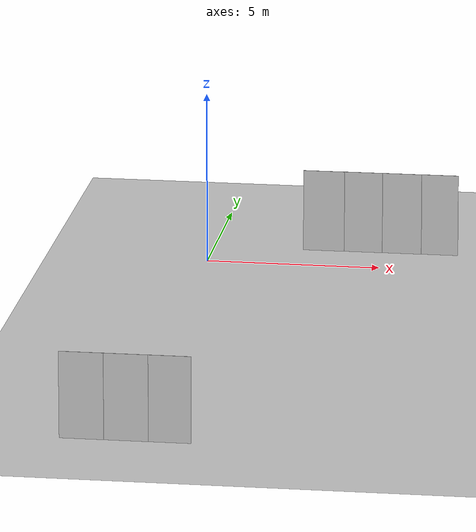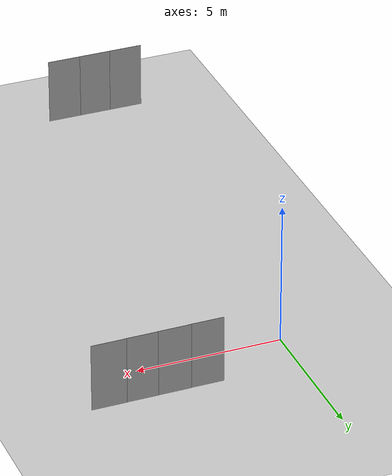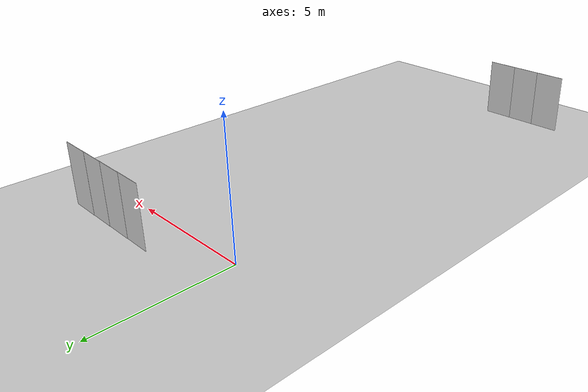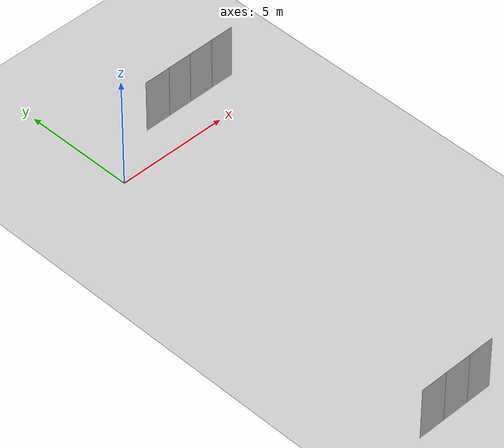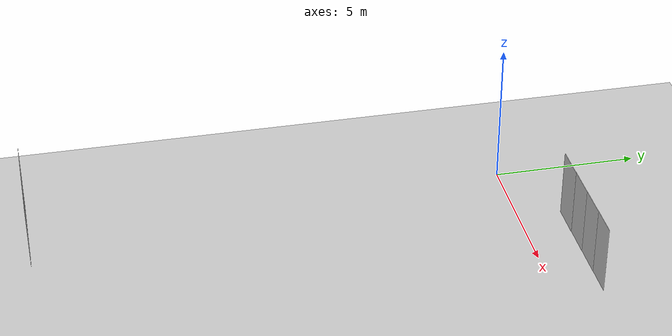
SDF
<sdf version="1.6">
 <world name="default">
  <include><uri>model://ground_plane</uri></include>
  <light name="sun" type="directional">
   <pose>0 0 10 0 -0 0</pose>
   <diffuse>0.8 0.8 0.8 1</diffuse>
   <specular>0.2 0.2 0.2 1</specular>
   <attenuation>
    <range>1000</range>
    <constant>0.9</constant>
    <linear>0.01</linear>
    <quadratic>0.001</quadratic>
   </attenuation>
   <direction>0 0.5 -0.9</direction>
  </light>
  <gravity>0 0 -9.8</gravity>
  <magnetic_field>6e-06 2.3e-05 -4.2e-05</magnetic_field>
  <atmosphere type="adiabatic"/>
  <physics name="default_physics" default="0" type="ode">
   <max_step_size>0.001</max_step_size>
   <real_time_factor>1</real_time_factor>
   <real_time_update_rate>1000</real_time_update_rate>
  </physics>
  <scene><ambient>0.4 0.4 0.4 1</ambient><background>0.7 0.7 0.7 1</background><shadows>1</shadows></scene>
  <spherical_coordinates>
   <surface_model>EARTH_WGS84</surface_model>
   <latitude_deg>0</latitude_deg>
   <longitude_deg>0</longitude_deg>
   <elevation>0</elevation>
   <heading_deg>0</heading_deg>
  </spherical_coordinates>
  <model name="nist_maze_wall_240">
   <static>1</static>
   <link name="nist__maze_wall_240_link">
    <collision name="collision">
     <geometry>
      <mesh><uri>model://nist_maze_wall_240/meshes/nist_maze_wall_240.dae</uri><scale>1 1 1</scale></mesh>
     </geometry>
    </collision>
    <visual name="visual">
     <geometry>
      <mesh><uri>model://nist_maze_wall_240/meshes/nist_maze_wall_240.dae</uri><scale>1 1 1</scale></mesh>
     </geometry>
    </visual>
   </link>
   <pose>6.51795 0.945836 0 0 -0 0</pose>
  </model>
  <model name="nist_maze_wall_240_0">
   <static>1</static>
   <link name="nist__maze_wall_240_link">
    <collision name="collision">
     <geometry>
      <mesh><uri>model://nist_maze_wall_240/meshes/nist_maze_wall_240.dae</uri><scale>1 1 1</scale></mesh>
     </geometry>
    </collision>
    <visual name="visual">
     <geometry>
      <mesh><uri>model://nist_maze_wall_240/meshes/nist_maze_wall_240.dae</uri><scale>1 1 1</scale></mesh>
     </geometry>
    </visual>
   </link>
   <pose>5.45212 0.938205 0 0 -0 0</pose>
  </model>
  <model name="nist_maze_wall_240_1">
   <static>1</static>
   <link name="nist__maze_wall_240_link">
    <collision name="collision">
     <geometry>
      <mesh><uri>model://nist_maze_wall_240/meshes/nist_maze_wall_240.dae</uri><scale>1 1 1</scale></mesh>
     </geometry>
    </collision>
    <visual name="visual">
     <geometry>
      <mesh><uri>model://nist_maze_wall_240/meshes/nist_maze_wall_240.dae</uri><scale>1 1 1</scale></mesh>
     </geometry>
    </visual>
   </link>
   <pose>4.31204 0.931453 0 0 -0 0</pose>
  </model>
  <model name="nist_maze_wall_240_2">
   <static>1</static>
   <link name="nist__maze_wall_240_link">
    <collision name="collision">
     <geometry>
      <mesh><uri>model://nist_maze_wall_240/meshes/nist_maze_wall_240.dae</uri><scale>1 1 1</scale></mesh>
     </geometry>
    </collision>
    <visual name="visual">
     <geometry>
      <mesh><uri>model://nist_maze_wall_240/meshes/nist_maze_wall_240.dae</uri><scale>1 1 1</scale></mesh>
     </geometry>
    </visual>
   </link>
   <pose>3.20219 0.920848 0 0 -0 0</pose>
  </model>
  <model name="nist_maze_wall_240_3">
   <static>1</static>
   <link name="nist__maze_wall_240_link">
    <collision name="collision">
     <geometry>
      <mesh><uri>model://nist_maze_wall_240/meshes/nist_maze_wall_240.dae</uri><scale>1 1 1</scale></mesh>
     </geometry>
    </collision>
    <visual name="visual">
     <geometry>
      <mesh><uri>model://nist_maze_wall_240/meshes/nist_maze_wall_240.dae</uri><scale>1 1 1</scale></mesh>
     </geometry>
    </visual>
   </link>
   <pose>-0.904587 -17.063 0 0 -0 0</pose>
  </model>
  <model name="nist_maze_wall_240_4">
   <static>1</static>
   <link name="nist__maze_wall_240_link">
    <collision name="collision">
     <geometry>
      <mesh><uri>model://nist_maze_wall_240/meshes/nist_maze_wall_240.dae</uri><scale>1 1 1</scale></mesh>
     </geometry>
    </collision>
    <visual name="visual">
     <geometry>
      <mesh><uri>model://nist_maze_wall_240/meshes/nist_maze_wall_240.dae</uri><scale>1 1 1</scale></mesh>
     </geometry>
    </visual>
   </link>
   <pose>0.289849 -17.0623 0 0 -0 0</pose>
  </model>
  <model name="nist_maze_wall_240_5">
   <static>1</static>
   <link name="nist__maze_wall_240_link">
    <collision name="collision">
     <geometry>
      <mesh><uri>model://nist_maze_wall_240/meshes/nist_maze_wall_240.dae</uri><scale>1 1 1</scale></mesh>
     </geometry>
    </collision>
    <visual name="visual">
     <geometry>
      <mesh><uri>model://nist_maze_wall_240/meshes/nist_maze_wall_240.dae</uri><scale>1 1 1</scale></mesh>
     </geometry>
    </visual>
   </link>
   <pose>1.42626 -17.0599 0 0 -0 0</pose>
  </model>
 </world>
</sdf>
